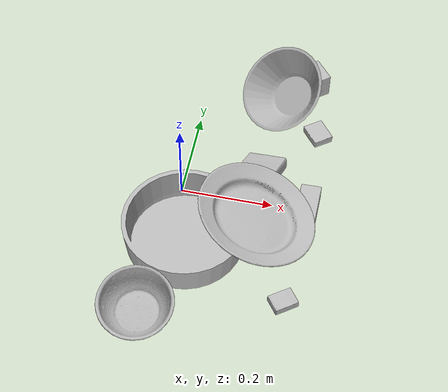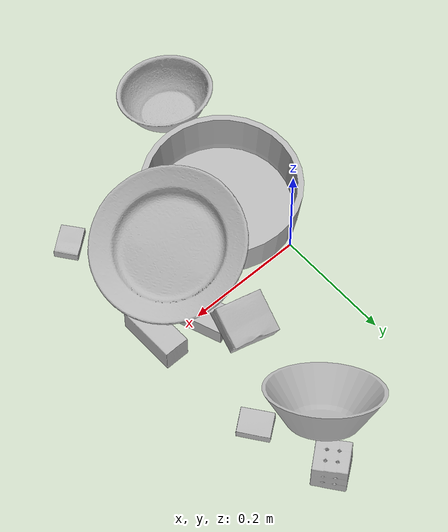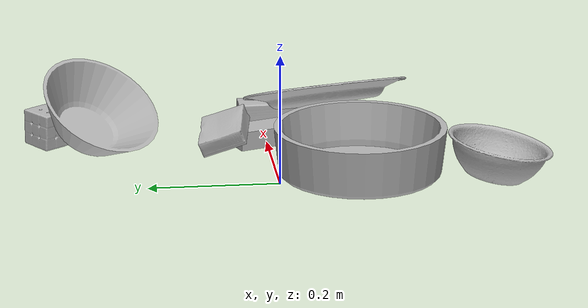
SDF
<sdf version="1.4">
  <world name="default">
    <light name="light1" type="point">
      <pose>0 0 1 0 0 0</pose>
      <diffuse>3 3 3 1</diffuse>
      <specular>3 3 3 1</specular>
    </light>
    <light name="light2" type="point">
      <pose>0 0.5 2 0 0 0</pose>
      <diffuse>1 1 1 1</diffuse>
      <specular>1 1 1 1</specular>
    </light>
    <light name="light3" type="point">
      <pose>0 0.5 2 0 0 0</pose>
      <diffuse>3 3 3 1</diffuse>
      <specular>3 3 3 1</specular>
    </light>
    <scene>
      <ambient>0.7 0.7 0.7</ambient>
    </scene>
    <model name="box1">
      <link name="link_box1">
        <collision name="default">
          <geometry>
            <mesh>
              <uri>model://pudding_box/collision_meshes/collision.obj</uri>
              <scale>0.5 0.5 0.5</scale>
            </mesh>
          </geometry>
          <surface>
            <friction>
              <ode>
                <mu>0.5</mu>
                <mu2>0.5</mu2>
              </ode>
            </friction>
          <contact>
        <ode>
            <max_vel>0</max_vel>
            <min_depth>0.0001</min_depth>
            <kp>1e8</kp>
        </ode>
    </contact></surface>
        </collision>
        <visual name="default">
          <geometry>
            <mesh>
              <uri>model://pudding_box/visual_meshes/visual.dae</uri>
              <scale>0.5 0.5 0.5</scale>
            </mesh>
          </geometry>
        </visual>
        <inertial>
          <mass>0.06043573096394539</mass>
          <pose>0.0002447410661261529 0.00040339428232982755 -0.0002594413817860186 0.005213102238104987 -0.006603800125102895 0.020079827017580043</pose>
          <inertia>
            <ixx>1.707987e-05</ixx>
            <iyy>1.1491458e-05</iyy>
            <izz>2.522289e-05</izz>
            <ixy>0</ixy>
            <ixz>0</ixz>
            <iyz>0</iyz>
          </inertia>
        </inertial>
      </link>
      <pose>0.2652599513530731 0.2090526819229126 0.009862901642918587 0.022348649620249687 -0.01139154646612869 -2.492429817741556</pose>
    </model>
    <model name="box11">
      <link name="link_box11">
        <collision name="default">
          <geometry>
            <mesh>
              <uri>model://wood_block/collision_meshes/collision.obj</uri>
              <scale>0.5 0.5 0.5</scale>
            </mesh>
          </geometry>
          <surface>
            <friction>
              <ode>
                <mu>0.5</mu>
                <mu2>0.5</mu2>
              </ode>
            </friction>
          <contact>
        <ode>
            <max_vel>0</max_vel>
            <min_depth>0.0001</min_depth>
            <kp>1e8</kp>
        </ode>
    </contact></surface>
        </collision>
        <visual name="default">
          <geometry>
            <mesh>
              <uri>model://wood_block/visual_meshes/visual.dae</uri>
              <scale>0.5 0.5 0.5</scale>
            </mesh>
          </geometry>
        </visual>
        <inertial>
          <mass>0.22556793689727783</mass>
          <pose>-2.9066577553749084e-06 -0.000285404734313488 0.00013204290007706732 -0.05220975528916272 -0.005192696013017626 -0.0068613779154948285</pose>
          <inertia>
            <ixx>7.5461e-05</ixx>
            <iyy>0.00023838133</iyy>
            <izz>0.00023748967</izz>
            <ixy>0</ixy>
            <ixz>0</ixz>
            <iyz>0</iyz>
          </inertia>
        </inertial>
      </link>
      <pose>0.27780458331108093 -0.012105203233659267 0.022629331797361374 -0.005217212415985852 0.005720729374598865 -1.5678445512636634</pose>
    </model>
    <model name="box2">
      <link name="link_box2">
        <collision name="default">
          <geometry>
            <mesh>
              <uri>model://jenga/collision_meshes/collision.obj</uri>
              <scale>1.0 1.0 1.0</scale>
            </mesh>
          </geometry>
          <surface>
            <friction>
              <ode>
                <mu>0.5</mu>
                <mu2>0.5</mu2>
              </ode>
            </friction>
          <contact>
        <ode>
            <max_vel>0</max_vel>
            <min_depth>0.0001</min_depth>
            <kp>1e8</kp>
        </ode>
    </contact></surface>
        </collision>
        <visual name="default">
          <geometry>
            <mesh>
              <uri>model://jenga/visual_meshes/visual.dae</uri>
              <scale>1.0 1.0 1.0</scale>
            </mesh>
          </geometry>
        </visual>
        <inertial>
          <mass>0.2534179985523224</mass>
          <pose>-2.502856091268768e-07 -0.00010250010382151231 -4.0923401684267446e-05 0.0 -7.342154049184251e-07 0.0</pose>
          <inertia>
            <ixx>7.012692e-05</ixx>
            <iyy>0.00047517804</iyy>
            <izz>0.000507293</izz>
            <ixy>0</ixy>
            <ixz>0</ixz>
            <iyz>0</iyz>
          </inertia>
        </inertial>
      </link>
      <pose>0.20715531706809998 -0.01862696371972561 0.015000241808593273 3.355182354191592e-06 1.3966637253431812e-06 1.9162184177742125</pose>
    </model>
    <model name="box21">
      <link name="link_box21">
        <collision name="default">
          <geometry>
            <mesh>
              <uri>model://cracker_box/collision_meshes/collision.obj</uri>
              <scale>0.25 0.25 0.25</scale>
            </mesh>
          </geometry>
          <surface>
            <friction>
              <ode>
                <mu>0.5</mu>
                <mu2>0.5</mu2>
              </ode>
            </friction>
          <contact>
        <ode>
            <max_vel>0</max_vel>
            <min_depth>0.0001</min_depth>
            <kp>1e8</kp>
        </ode>
    </contact></surface>
        </collision>
        <visual name="default">
          <geometry>
            <mesh>
              <uri>model://cracker_box/visual_meshes/visual.dae</uri>
              <scale>0.25 0.25 0.25</scale>
            </mesh>
          </geometry>
        </visual>
        <inertial>
          <mass>0.04045860841870308</mass>
          <pose>0.0002366030093980953 6.358561950037256e-05 -0.0004257383698131889 -0.0003162076898946344 -0.011106488668808423 0.0025467959335197018</pose>
          <inertia>
            <ixx>6.4317906e-06</ixx>
            <iyy>1.062015e-05</iyy>
            <izz>1.5155927e-05</izz>
            <ixy>0</ixy>
            <ixz>0</ixz>
            <iyz>0</iyz>
          </inertia>
        </inertial>
      </link>
      <pose>0.2667728066444397 -0.2376326620578766 0.009120449423789978 -0.011788073459159066 -0.0073671056534244704 -2.502814239385036</pose>
    </model>
    <model name="box3">
      <link name="link_box3">
        <collision name="default">
          <geometry>
            <mesh>
              <uri>model://rubiks_cube/collision_meshes/collision.obj</uri>
              <scale>1.0 1.0 1.0</scale>
            </mesh>
          </geometry>
          <surface>
            <friction>
              <ode>
                <mu>0.5</mu>
                <mu2>0.5</mu2>
              </ode>
            </friction>
          <contact>
        <ode>
            <max_vel>0</max_vel>
            <min_depth>0.0001</min_depth>
            <kp>1e8</kp>
        </ode>
    </contact></surface>
        </collision>
        <visual name="default">
          <geometry>
            <mesh>
              <uri>model://rubiks_cube/visual_meshes/visual.dae</uri>
              <scale>1.0 1.0 1.0</scale>
            </mesh>
          </geometry>
        </visual>
        <inertial>
          <mass>0.12779320776462555</mass>
          <pose>2.6721041649580002e-05 5.2569666877388954e-05 -7.264316082000732e-06 -0.054672129212199855 -0.09814057073985563 -0.03445704008669109</pose>
          <inertia>
            <ixx>7.061434e-05</ixx>
            <iyy>7.0285016e-05</iyy>
            <izz>7.119949e-05</izz>
            <ixy>0</ixy>
            <ixz>0</ixz>
            <iyz>0</iyz>
          </inertia>
        </inertial>
      </link>
      <pose>0.23050855100154877 0.3440905511379242 0.02867971733212471 -2.019130115222034e-05 2.7894414122826317e-05 -0.8930795699144779</pose>
    </model>
    <model name="box31">
      <link name="link_box31">
        <collision name="default">
          <geometry>
            <mesh>
              <uri>model://gelatin_box/collision_meshes/collision.obj</uri>
              <scale>1.0 1.0 1.0</scale>
            </mesh>
          </geometry>
          <surface>
            <friction>
              <ode>
                <mu>0.5</mu>
                <mu2>0.5</mu2>
              </ode>
            </friction>
          <contact>
        <ode>
            <max_vel>0</max_vel>
            <min_depth>0.0001</min_depth>
            <kp>1e8</kp>
        </ode>
    </contact></surface>
        </collision>
        <visual name="default">
          <geometry>
            <mesh>
              <uri>model://gelatin_box/visual_meshes/visual.dae</uri>
              <scale>1.0 1.0 1.0</scale>
            </mesh>
          </geometry>
        </visual>
        <inertial>
          <mass>0.20050984621047974</mass>
          <pose>0.0004319618456065655 0.00011156872642459348 -0.00036403213744051754 -0.0010503720853528096 -0.004755817758068365 0.016440559471334753</pose>
          <inertia>
            <ixx>0.00014154361</ixx>
            <iyy>0.00010110386</iyy>
            <izz>0.0002154609</izz>
            <ixy>0</ixy>
            <ixz>0</ixz>
            <iyz>0</iyz>
          </inertia>
        </inertial>
      </link>
      <pose>0.16329890489578247 0.07121511548757553 0.034772444516420364 -0.22542015310682503 0.35354077816663776 1.3285791660207127</pose>
    </model>
    <model name="plate1">
      <link name="link_plate1">
        <collision name="default">
          <geometry>
            <mesh>
              <uri>model://pan_tefal/collision_meshes/collision.obj</uri>
              <scale>1.0 1.0 1.0</scale>
            </mesh>
          </geometry>
          <surface>
            <friction>
              <ode>
                <mu>0.5</mu>
                <mu2>0.5</mu2>
              </ode>
            </friction>
          <contact>
        <ode>
            <max_vel>0</max_vel>
            <min_depth>0.0001</min_depth>
            <kp>1e8</kp>
        </ode>
    </contact></surface>
        </collision>
        <visual name="default">
          <geometry>
            <mesh>
              <uri>model://pan_tefal/visual_meshes/visual.dae</uri>
              <scale>1.0 1.0 1.0</scale>
            </mesh>
          </geometry>
        </visual>
        <inertial>
          <mass>0.9166961908340454</mass>
          <pose>-0.00018002631259150803 3.279098018538207e-05 -0.00851493515074253 0.0008190256602529888 -0.0003301357182707761 -0.33185348708971</pose>
          <inertia>
            <ixx>0.006327908</ixx>
            <iyy>0.006368705</iyy>
            <izz>0.01164846</izz>
            <ixy>0</ixy>
            <ixz>0</ixz>
            <iyz>0</iyz>
          </inertia>
        </inertial>
      </link>
      <pose>0.03583647310733795 -0.12662945687770844 0.03796850144863129 -0.00045000159945850416 -0.0004505312731324065 -0.7158559921531723</pose>
    </model>
    <model name="bowl1">
      <link name="link_bowl1">
        <collision name="default">
          <geometry>
            <mesh>
              <uri>model://bowl_a/collision_meshes/collision.obj</uri>
              <scale>1.0 1.0 1.0</scale>
            </mesh>
          </geometry>
          <surface>
            <friction>
              <ode>
                <mu>0.5</mu>
                <mu2>0.5</mu2>
              </ode>
            </friction>
          <contact>
        <ode>
            <max_vel>0</max_vel>
            <min_depth>0.0001</min_depth>
            <kp>1e8</kp>
        </ode>
    </contact></surface>
        </collision>
        <visual name="default">
          <geometry>
            <mesh>
              <uri>model://bowl_a/visual_meshes/visual.dae</uri>
              <scale>1.0 1.0 1.0</scale>
            </mesh>
          </geometry>
        </visual>
        <inertial>
          <mass>0.44606471061706543</mass>
          <pose>0.0002786746481433511 4.7312179958680645e-05 -0.0013765294570475817 -0.0009805488171165768 -0.0010938123304380014 -0.19122487556540352</pose>
          <inertia>
            <ixx>0.0012699668</ixx>
            <iyy>0.001277764</iyy>
            <izz>0.0022586845</izz>
            <ixy>0</ixy>
            <ixz>0</ixz>
            <iyz>0</iyz>
          </inertia>
        </inertial>
      </link>
      <pose>0.18290311098098755 0.2747000753879547 0.05677269026637077 -0.5979656069829375 -0.17761526185591084 2.101211211548346</pose>
    </model>
    <model name="plate2">
      <link name="link_plate2">
        <collision name="default">
          <geometry>
            <mesh>
              <uri>model://plate/collision_meshes/collision.obj</uri>
              <scale>1.0 1.0 1.0</scale>
            </mesh>
          </geometry>
          <surface>
            <friction>
              <ode>
                <mu>0.5</mu>
                <mu2>0.5</mu2>
              </ode>
            </friction>
          <contact>
        <ode>
            <max_vel>0</max_vel>
            <min_depth>0.0001</min_depth>
            <kp>1e8</kp>
        </ode>
    </contact></surface>
        </collision>
        <visual name="default">
          <geometry>
            <mesh>
              <uri>model://plate/visual_meshes/visual.dae</uri>
              <scale>1.0 1.0 1.0</scale>
            </mesh>
          </geometry>
        </visual>
        <inertial>
          <mass>0.10088177025318146</mass>
          <pose>-0.0006044645560905337 0.0002782582596410066 -0.0010561994276940823 0.002218810424575964 -0.003225458488037908 0.4526011088858205</pose>
          <inertia>
            <ixx>0.00047192685</ixx>
            <iyy>0.00046741302</iyy>
            <izz>0.00092301855</izz>
            <ixy>0</ixy>
            <ixz>0</ixz>
            <iyz>0</iyz>
          </inertia>
        </inertial>
      </link>
      <pose>0.1793508529663086 -0.09134888648986816 0.08257357776165009 -0.2739986748397375 0.22802411544696302 -0.6323149226636205</pose>
    </model>
    <model name="bowl2">
      <link name="link_bowl2">
        <collision name="default">
          <geometry>
            <mesh>
              <uri>model://bowl/collision_meshes/collision.obj</uri>
              <scale>1.0 1.0 1.0</scale>
            </mesh>
          </geometry>
          <surface>
            <friction>
              <ode>
                <mu>0.5</mu>
                <mu2>0.5</mu2>
              </ode>
            </friction>
          <contact>
        <ode>
            <max_vel>0</max_vel>
            <min_depth>0.0001</min_depth>
            <kp>1e8</kp>
        </ode>
    </contact></surface>
        </collision>
        <visual name="default">
          <geometry>
            <mesh>
              <uri>model://bowl/visual_meshes/visual.dae</uri>
              <scale>1.0 1.0 1.0</scale>
            </mesh>
          </geometry>
        </visual>
        <inertial>
          <mass>0.10570208728313446</mass>
          <pose>0.00020445376867428422 -0.00103021040558815 -0.000804263399913907 -0.015764090239829616 0.014546785988443214 0.7140402180265782</pose>
          <inertia>
            <ixx>0.00024280604</ixx>
            <iyy>0.0002373808</iyy>
            <izz>0.0004084832</izz>
            <ixy>0</ixy>
            <ixz>0</ixz>
            <iyz>0</iyz>
          </inertia>
        </inertial>
      </link>
      <pose>-0.020152369514107704 -0.3275865614414215 0.03553025797009468 -0.08068098416978377 0.1738616244907528 -2.057079210299133</pose>
    </model>
  <physics type="ode">
      <max_contacts>50</max_contacts>
      <ode>
        <solver>
          <type>quick</type>
          <iters>75</iters>
        </solver>
        <constraints>
          <contact_max_correcting_vel>0</contact_max_correcting_vel>
          <contact_surface_layer>0</contact_surface_layer>
        </constraints>
      </ode>
    </physics></world>
</sdf>
